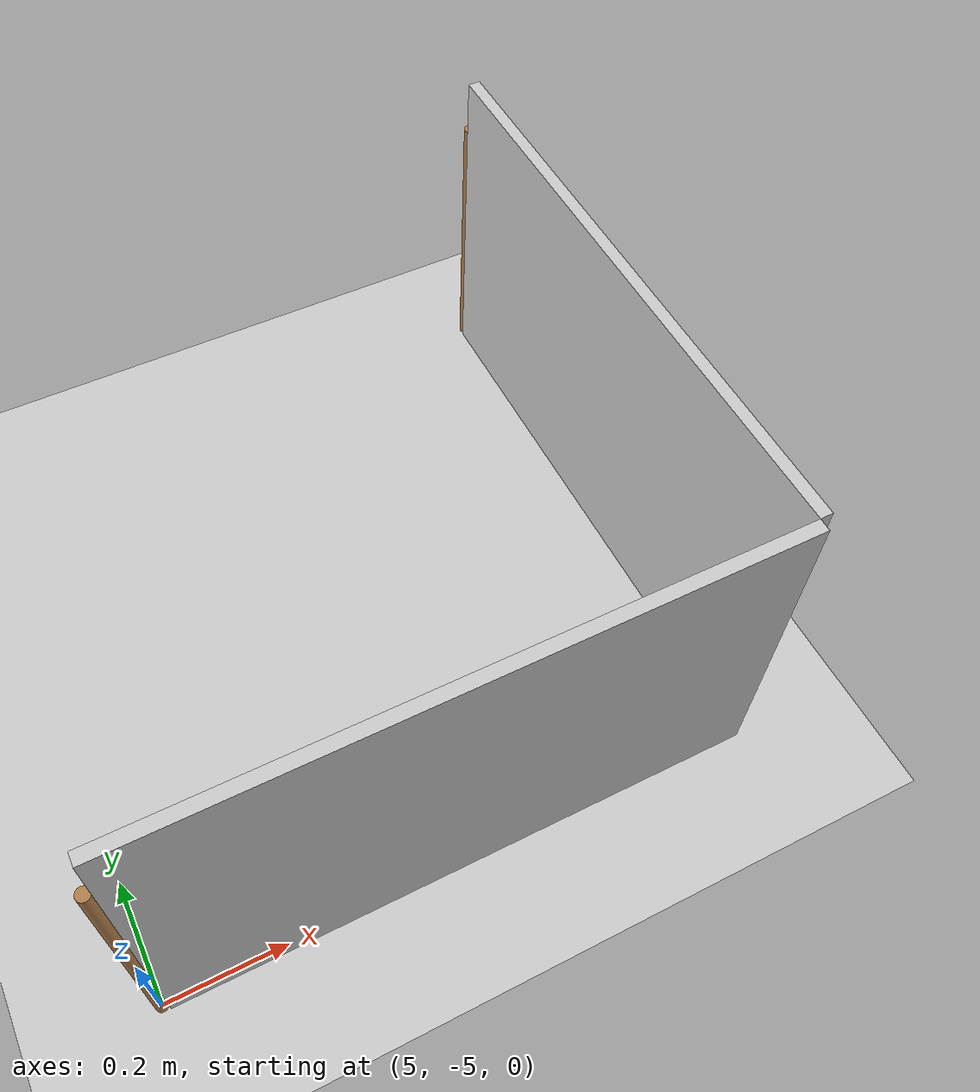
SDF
<sdf version="1.7">
 <world name="default">
  <model name="ground_plane">
   <static>true</static>
   <link name="link">
    <collision name="collision">
     <geometry><plane><normal>0 0 1</normal><size>1 1</size></plane></geometry>
    </collision>
    <visual name="visual">
     <geometry><plane><normal>0 0 1</normal><size>100 100</size></plane></geometry>
     <material>
      <ambient>0.8 0.8 0.8 1</ambient>
      <diffuse>0.8 0.8 0.8 1</diffuse>
      <specular>0.8 0.8 0.8 1</specular>
     </material>
    </visual>
    <inertial>
     <mass>1</mass>
     <inertia><ixx>1</ixx><ixy>0</ixy><ixz>0</ixz><iyy>1</iyy><iyz>0</iyz><izz>1</izz></inertia>
    </inertial>
   </link>
  </model>
  <model name="maze_1_6x5_clone_2_clone_clone_clone_5">
   <frame name="plywood_panel_0_0_b::__model__" attached_to="plywood_panel_0_0_b::main">
    <pose relative_to="__model__">0 0 0 0 -0 1.571</pose>
   </frame>
   <static>true</static>
   <link name="plywood_panel_0_0_b::main">
    <pose relative_to="plywood_panel_0_0_b::__model__">0 0 0 0 -0 0</pose>
    <collision name="collision">
     <pose>0 -0.5 0.3 -1.571 -0 -1.571</pose>
     <geometry><box><size>0.98 0.6 0.02</size></box></geometry>
    </collision>
    <visual name="visual">
     <pose>0.01 -0.01 0 3.14159 -1.57059 3.14159</pose>
     <geometry>
      <mesh>
       <scale>1 1 1</scale>
       <uri>/home/mayank/cognipilot/cranium/src/dream_world/models/plywood_panel/meshes/plywood.dae</uri>
      </mesh>
     </geometry>
    </visual>
   </link>
   <frame name="wooden_joint_0_0_b::__model__" attached_to="wooden_joint_0_0_b::link_0">
    <pose relative_to="__model__">0 0 0 0 -0 0</pose>
   </frame>
   <link name="wooden_joint_0_0_b::link_0">
    <pose relative_to="wooden_joint_0_0_b::__model__">0 0 0.25 0 -0 0</pose>
    <inertial>
     <mass>0.00215981</mass>
     <inertia>
      <ixx>0.00018028</ixx>
      <ixy>0</ixy>
      <ixz>0</ixz>
      <iyy>0.00018028</iyy>
      <iyz>0</iyz>
      <izz>5.8e-07</izz>
     </inertia>
    </inertial>
    <visual name="visual">
     <geometry><cylinder><radius>0.01</radius><length>0.5</length></cylinder></geometry>
     <material>
      <lighting>1</lighting>
      <script><uri>file://media/materials/scripts/gazebo.material</uri><name>Gazebo/Wood</name></script>
      <shader type="pixel"><normal_map>__default__</normal_map></shader>
      <ambient>0.3 0.3 0.3 1</ambient>
      <diffuse>0.7 0.7 0.7 1</diffuse>
      <specular>0.01 0.01 0.01 1</specular>
      <emissive>0 0 0 1</emissive>
     </material>
    </visual>
    <collision name="collision">
     <geometry><cylinder><radius>0.01</radius><length>0.5</length></cylinder></geometry>
     <surface>
      <friction>
       <ode><mu>1</mu><mu2>1</mu2><fdir1>0 0 0</fdir1><slip1>0</slip1><slip2>0</slip2></ode>
       <torsional>
        <coefficient>1</coefficient>
        <patch_radius>0</patch_radius>
        <surface_radius>0</surface_radius>
        <use_patch_radius>1</use_patch_radius>
        <ode><slip>0</slip></ode>
       </torsional>
      </friction>
      <bounce><restitution_coefficient>0</restitution_coefficient><threshold>1e+06</threshold></bounce>
      <contact>
       <collide_without_contact>0</collide_without_contact>
       <collide_without_contact_bitmask>1</collide_without_contact_bitmask>
       <collide_bitmask>1</collide_bitmask>
       <ode>
        <soft_cfm>0</soft_cfm>
        <soft_erp>0.2</soft_erp>
        <kp>1e+13</kp>
        <kd>1</kd>
        <max_vel>0.01</max_vel>
        <min_depth>0</min_depth>
       </ode>
       <bullet>
        <split_impulse>1</split_impulse>
        <split_impulse_penetration_threshold>-0.01</split_impulse_penetration_threshold>
        <soft_cfm>0</soft_cfm>
        <soft_erp>0.2</soft_erp>
        <kp>1e+13</kp>
        <kd>1</kd>
       </bullet>
      </contact>
     </surface>
    </collision>
   </link>
   <static>true</static>
   <pose>5 -5 0 0 0 -4e-06</pose>
  </model>
  <model name="maze_1_6x5_clone_clone_0">
   <frame name="plywood_panel_0_0_b::__model__" attached_to="plywood_panel_0_0_b::main">
    <pose relative_to="__model__">0 0 0 0 -0 1.571</pose>
   </frame>
   <static>true</static>
   <link name="plywood_panel_0_0_b::main">
    <pose relative_to="plywood_panel_0_0_b::__model__">0 0 0 0 -0 0</pose>
    <collision name="collision">
     <pose>0 -0.5 0.3 -1.571 -0 -1.571</pose>
     <geometry><box><size>0.98 0.6 0.02</size></box></geometry>
    </collision>
    <visual name="visual">
     <pose>0.01 -0.01 0 3.14159 -1.57059 3.14159</pose>
     <geometry>
      <mesh>
       <scale>1 1 1</scale>
       <uri>/home/mayank/cognipilot/cranium/src/dream_world/models/plywood_panel/meshes/plywood.dae</uri>
      </mesh>
     </geometry>
    </visual>
   </link>
   <frame name="wooden_joint_0_0_b::__model__" attached_to="wooden_joint_0_0_b::link_0">
    <pose relative_to="__model__">0 0 0 0 -0 0</pose>
   </frame>
   <link name="wooden_joint_0_0_b::link_0">
    <pose relative_to="wooden_joint_0_0_b::__model__">0 0 0.25 0 -0 0</pose>
    <inertial>
     <mass>0.00215981</mass>
     <inertia>
      <ixx>0.00018028</ixx>
      <ixy>0</ixy>
      <ixz>0</ixz>
      <iyy>0.00018028</iyy>
      <iyz>0</iyz>
      <izz>5.8e-07</izz>
     </inertia>
    </inertial>
    <visual name="visual">
     <geometry><cylinder><radius>0.01</radius><length>0.5</length></cylinder></geometry>
     <material>
      <lighting>1</lighting>
      <script><uri>file://media/materials/scripts/gazebo.material</uri><name>Gazebo/Wood</name></script>
      <shader type="pixel"><normal_map>__default__</normal_map></shader>
      <ambient>0.3 0.3 0.3 1</ambient>
      <diffuse>0.7 0.7 0.7 1</diffuse>
      <specular>0.01 0.01 0.01 1</specular>
      <emissive>0 0 0 1</emissive>
     </material>
    </visual>
    <collision name="collision">
     <geometry><cylinder><radius>0.01</radius><length>0.5</length></cylinder></geometry>
     <surface>
      <friction>
       <ode><mu>1</mu><mu2>1</mu2><fdir1>0 0 0</fdir1><slip1>0</slip1><slip2>0</slip2></ode>
       <torsional>
        <coefficient>1</coefficient>
        <patch_radius>0</patch_radius>
        <surface_radius>0</surface_radius>
        <use_patch_radius>1</use_patch_radius>
        <ode><slip>0</slip></ode>
       </torsional>
      </friction>
      <bounce><restitution_coefficient>0</restitution_coefficient><threshold>1e+06</threshold></bounce>
      <contact>
       <collide_without_contact>0</collide_without_contact>
       <collide_without_contact_bitmask>1</collide_without_contact_bitmask>
       <collide_bitmask>1</collide_bitmask>
       <ode>
        <soft_cfm>0</soft_cfm>
        <soft_erp>0.2</soft_erp>
        <kp>1e+13</kp>
        <kd>1</kd>
        <max_vel>0.01</max_vel>
        <min_depth>0</min_depth>
       </ode>
       <bullet>
        <split_impulse>1</split_impulse>
        <split_impulse_penetration_threshold>-0.01</split_impulse_penetration_threshold>
        <soft_cfm>0</soft_cfm>
        <soft_erp>0.2</soft_erp>
        <kp>1e+13</kp>
        <kd>1</kd>
       </bullet>
      </contact>
     </surface>
    </collision>
   </link>
   <static>true</static>
   <pose>6 -4 0 0 0 -1.5708</pose>
  </model>
 </world>
</sdf>
